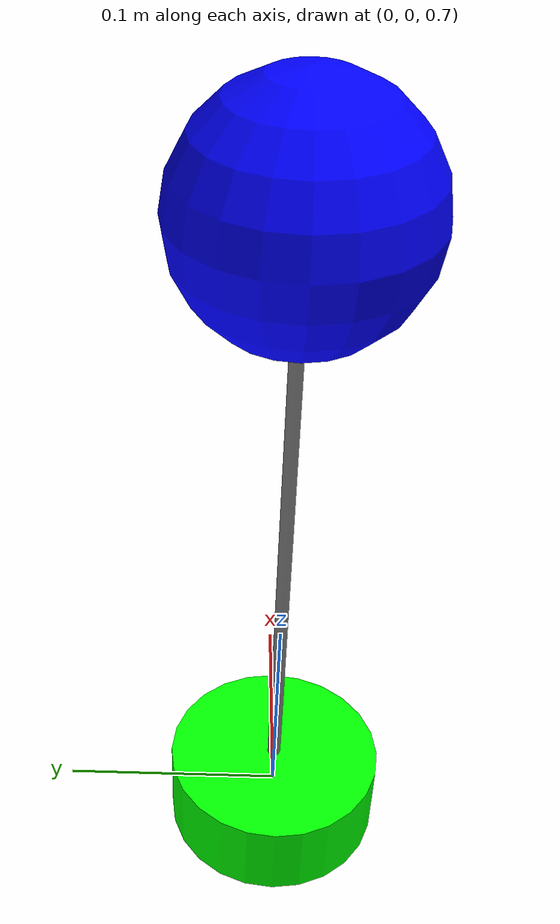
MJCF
<mujoco model="spring_scale">
    <compiler angle="radian" />
    <option gravity="0 0 -9.81" />

    <worldbody>

        <geom name="ground" type="plane" pos="0 0 0" size="2 2 0.1" rgba="0.7 0.7 0.7 1" friction="1 1 1" />

        <body name="object_1" pos="0 0 1">
            <geom type="sphere" size="0.05" rgba="0 0 1 1" />
            <site name="anchor_site" pos="0 0 0" />

            <body name="object_2" pos="0 0 -0.3">
                <joint name="slider_joint" type="slide" axis="0 0 1" damping="1" />
                <geom type="cylinder" size="0.05 0.02" rgba="0 1 0 1" />
                <site name="slider_site" pos="0 0 0" />
            </body>
        </body>

        </worldbody>

    <tendon>

        <spatial name="spring1" range="0.3 0.7" stiffness="50" damping="2">
            <site site="anchor_site" />
            <site site="slider_site" />
        </spatial>
    </tendon>
</mujoco>
